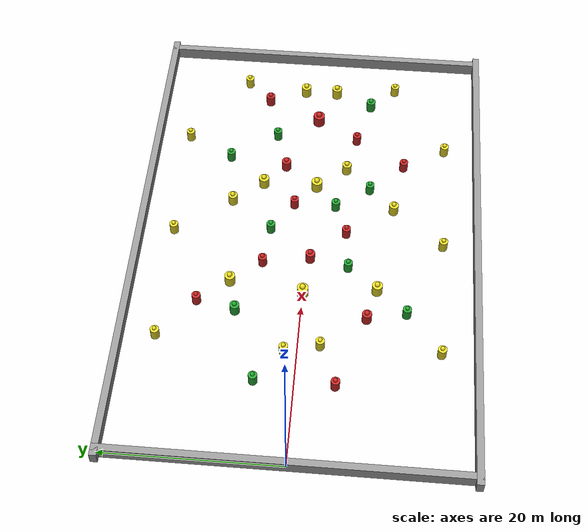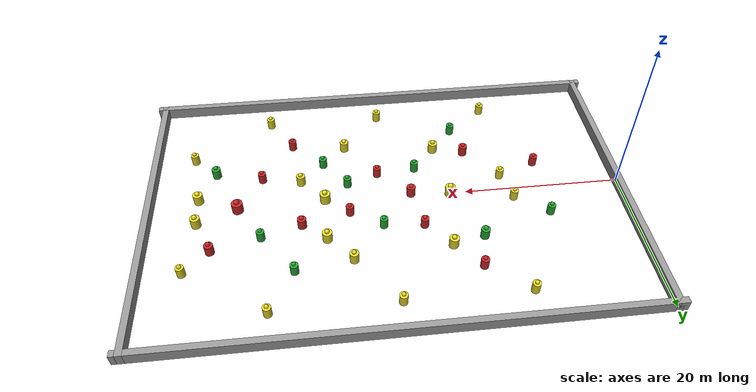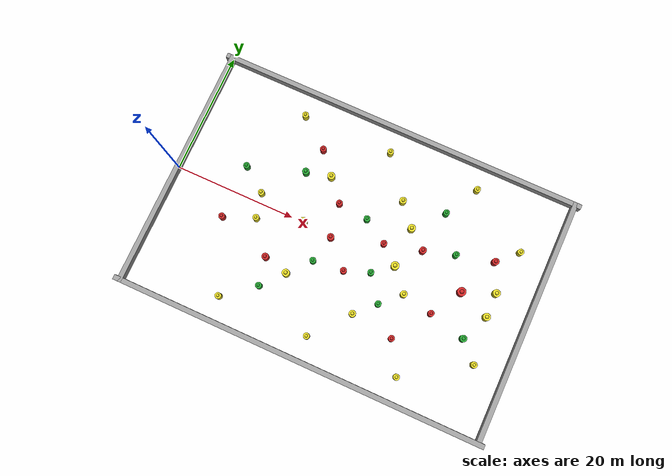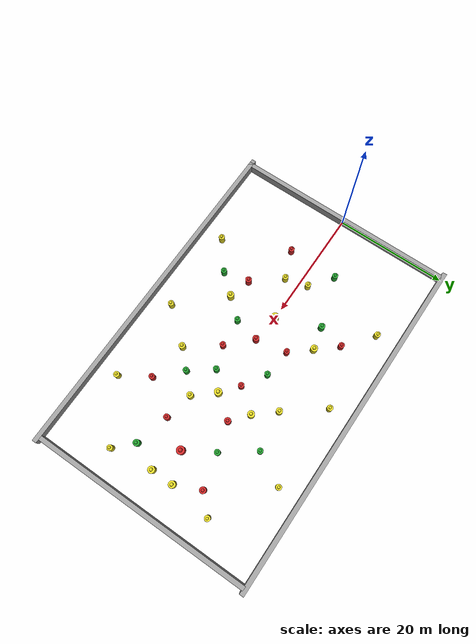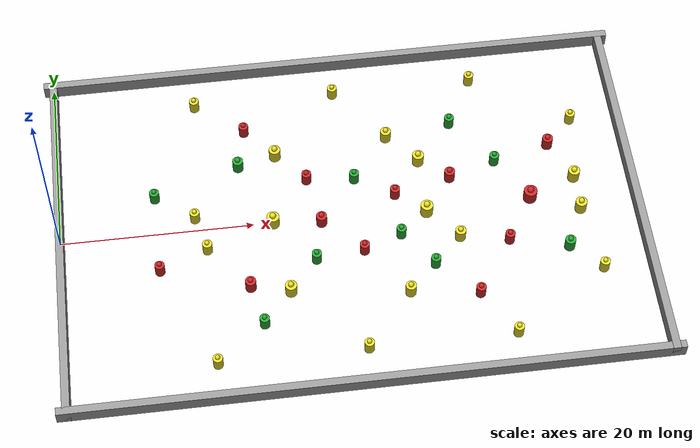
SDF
<sdf version="1.6">
 <world name="closed_aquatic_arena">
  <scene><sky><clouds><speed>12</speed></clouds></sky><grid>0</grid><origin_visual>0</origin_visual></scene>
  <include><uri>model://sun</uri></include>
  <model name="wall_north">
   <static>true</static>
   <pose>30 20 0.5 0 0 0</pose>
   <link name="link">
    <visual name="visual">
     <geometry><box><size>62 0.8 1.5</size></box></geometry>
     <material><script><name>Gazebo/Grey</name></script></material>
    </visual>
    <collision name="collision"><geometry><box><size>62 0.8 1.5</size></box></geometry></collision>
   </link>
  </model>
  <model name="wall_south">
   <static>true</static>
   <pose>30 -20 0.5 0 0 0</pose>
   <link name="link">
    <visual name="visual">
     <geometry><box><size>62 0.8 1.5</size></box></geometry>
     <material><script><name>Gazebo/Grey</name></script></material>
    </visual>
    <collision name="collision"><geometry><box><size>62 0.8 1.5</size></box></geometry></collision>
   </link>
  </model>
  <model name="wall_east">
   <static>true</static>
   <pose>60 0 0.5 0 0 0</pose>
   <link name="link">
    <visual name="visual">
     <geometry><box><size>0.8 40.8 1.5</size></box></geometry>
     <material><script><name>Gazebo/Grey</name></script></material>
    </visual>
    <collision name="collision"><geometry><box><size>0.8 40.8 1.5</size></box></geometry></collision>
   </link>
  </model>
  <model name="wall_west">
   <static>true</static>
   <pose>0 0 0.5 0 0 0</pose>
   <link name="link">
    <visual name="visual">
     <geometry><box><size>0.8 40.8 1.5</size></box></geometry>
     <material><script><name>Gazebo/Grey</name></script></material>
    </visual>
    <collision name="collision"><geometry><box><size>0.8 40.8 1.5</size></box></geometry></collision>
   </link>
  </model>
  <model name="buoy_gate1_green">
   <static>true</static>
   <pose>10.0 4.5 0.5 0 0 0</pose>
   <link name="link">
    <visual name="body">
     <geometry><cylinder><radius>0.50</radius><length>1.40</length></cylinder></geometry>
     <material><script><name>Gazebo/Green</name></script></material>
    </visual>
    <visual name="top_beacon">
     <pose>0 0 0.85 0 0 0</pose>
     <geometry><sphere><radius>0.25</radius></sphere></geometry>
     <material><script><name>Gazebo/Green</name></script></material>
    </visual>
    <collision name="collision">
     <geometry><cylinder><radius>0.50</radius><length>1.40</length></cylinder></geometry>
    </collision>
   </link>
  </model>
  <model name="buoy_gate1_red">
   <static>true</static>
   <pose>10.0 -4.5 0.5 0 0 0</pose>
   <link name="link">
    <visual name="body">
     <geometry><cylinder><radius>0.50</radius><length>1.40</length></cylinder></geometry>
     <material><script><name>Gazebo/Red</name></script></material>
    </visual>
    <visual name="top_beacon">
     <pose>0 0 0.85 0 0 0</pose>
     <geometry><sphere><radius>0.25</radius></sphere></geometry>
     <material><script><name>Gazebo/Red</name></script></material>
    </visual>
    <collision name="collision">
     <geometry><cylinder><radius>0.50</radius><length>1.40</length></cylinder></geometry>
    </collision>
   </link>
  </model>
  <model name="buoy_start_haz1">
   <static>true</static>
   <pose>14.0 1.5 0.5 0 0 0</pose>
   <link name="link">
    <visual name="body">
     <geometry><cylinder><radius>0.50</radius><length>1.40</length></cylinder></geometry>
     <material><script><name>Gazebo/Yellow</name></script></material>
    </visual>
    <visual name="top_beacon">
     <pose>0 0 0.85 0 0 0</pose>
     <geometry><sphere><radius>0.25</radius></sphere></geometry>
     <material><script><name>Gazebo/Yellow</name></script></material>
    </visual>
    <collision name="collision">
     <geometry><cylinder><radius>0.50</radius><length>1.40</length></cylinder></geometry>
    </collision>
   </link>
  </model>
  <model name="buoy_start_haz2">
   <static>true</static>
   <pose>15.0 -2.5 0.5 0 0 0</pose>
   <link name="link">
    <visual name="body">
     <geometry><cylinder><radius>0.50</radius><length>1.40</length></cylinder></geometry>
     <material><script><name>Gazebo/Yellow</name></script></material>
    </visual>
    <visual name="top_beacon">
     <pose>0 0 0.85 0 0 0</pose>
     <geometry><sphere><radius>0.25</radius></sphere></geometry>
     <material><script><name>Gazebo/Yellow</name></script></material>
    </visual>
    <collision name="collision">
     <geometry><cylinder><radius>0.50</radius><length>1.40</length></cylinder></geometry>
    </collision>
   </link>
  </model>
  <model name="buoy_s1_green1">
   <static>true</static>
   <pose>19.0 7.5 0.5 0 0 0</pose>
   <link name="link">
    <visual name="body">
     <geometry><cylinder><radius>0.55</radius><length>1.40</length></cylinder></geometry>
     <material><script><name>Gazebo/Green</name></script></material>
    </visual>
    <visual name="top_beacon">
     <pose>0 0 0.85 0 0 0</pose>
     <geometry><sphere><radius>0.28</radius></sphere></geometry>
     <material><script><name>Gazebo/Green</name></script></material>
    </visual>
    <collision name="collision">
     <geometry><cylinder><radius>0.55</radius><length>1.40</length></cylinder></geometry>
    </collision>
   </link>
  </model>
  <model name="buoy_s1_red1">
   <static>true</static>
   <pose>20.0 12.0 0.5 0 0 0</pose>
   <link name="link">
    <visual name="body">
     <geometry><cylinder><radius>0.50</radius><length>1.40</length></cylinder></geometry>
     <material><script><name>Gazebo/Red</name></script></material>
    </visual>
    <visual name="top_beacon">
     <pose>0 0 0.85 0 0 0</pose>
     <geometry><sphere><radius>0.25</radius></sphere></geometry>
     <material><script><name>Gazebo/Red</name></script></material>
    </visual>
    <collision name="collision">
     <geometry><cylinder><radius>0.50</radius><length>1.40</length></cylinder></geometry>
    </collision>
   </link>
  </model>
  <model name="buoy_s1_haz1">
   <static>true</static>
   <pose>23.0 8.5 0.5 0 0 0</pose>
   <link name="link">
    <visual name="body">
     <geometry><cylinder><radius>0.60</radius><length>1.40</length></cylinder></geometry>
     <material><script><name>Gazebo/Yellow</name></script></material>
    </visual>
    <visual name="top_beacon">
     <pose>0 0 0.85 0 0 0</pose>
     <geometry><sphere><radius>0.30</radius></sphere></geometry>
     <material><script><name>Gazebo/Yellow</name></script></material>
    </visual>
    <collision name="collision">
     <geometry><cylinder><radius>0.60</radius><length>1.40</length></cylinder></geometry>
    </collision>
   </link>
  </model>
  <model name="buoy_s1_red2">
   <static>true</static>
   <pose>26.0 5.0 0.5 0 0 0</pose>
   <link name="link">
    <visual name="body">
     <geometry><cylinder><radius>0.50</radius><length>1.40</length></cylinder></geometry>
     <material><script><name>Gazebo/Red</name></script></material>
    </visual>
    <visual name="top_beacon">
     <pose>0 0 0.85 0 0 0</pose>
     <geometry><sphere><radius>0.25</radius></sphere></geometry>
     <material><script><name>Gazebo/Red</name></script></material>
    </visual>
    <collision name="collision">
     <geometry><cylinder><radius>0.50</radius><length>1.40</length></cylinder></geometry>
    </collision>
   </link>
  </model>
  <model name="buoy_s1_red3">
   <static>true</static>
   <pose>19.0 -7.5 0.5 0 0 0</pose>
   <link name="link">
    <visual name="body">
     <geometry><cylinder><radius>0.55</radius><length>1.40</length></cylinder></geometry>
     <material><script><name>Gazebo/Red</name></script></material>
    </visual>
    <visual name="top_beacon">
     <pose>0 0 0.85 0 0 0</pose>
     <geometry><sphere><radius>0.28</radius></sphere></geometry>
     <material><script><name>Gazebo/Red</name></script></material>
    </visual>
    <collision name="collision">
     <geometry><cylinder><radius>0.55</radius><length>1.40</length></cylinder></geometry>
    </collision>
   </link>
  </model>
  <model name="buoy_s1_green2">
   <static>true</static>
   <pose>20.0 -12.0 0.5 0 0 0</pose>
   <link name="link">
    <visual name="body">
     <geometry><cylinder><radius>0.50</radius><length>1.40</length></cylinder></geometry>
     <material><script><name>Gazebo/Green</name></script></material>
    </visual>
    <visual name="top_beacon">
     <pose>0 0 0.85 0 0 0</pose>
     <geometry><sphere><radius>0.25</radius></sphere></geometry>
     <material><script><name>Gazebo/Green</name></script></material>
    </visual>
    <collision name="collision">
     <geometry><cylinder><radius>0.50</radius><length>1.40</length></cylinder></geometry>
    </collision>
   </link>
  </model>
  <model name="buoy_s1_haz2">
   <static>true</static>
   <pose>23.0 -8.5 0.5 0 0 0</pose>
   <link name="link">
    <visual name="body">
     <geometry><cylinder><radius>0.60</radius><length>1.40</length></cylinder></geometry>
     <material><script><name>Gazebo/Yellow</name></script></material>
    </visual>
    <visual name="top_beacon">
     <pose>0 0 0.85 0 0 0</pose>
     <geometry><sphere><radius>0.30</radius></sphere></geometry>
     <material><script><name>Gazebo/Yellow</name></script></material>
    </visual>
    <collision name="collision">
     <geometry><cylinder><radius>0.60</radius><length>1.40</length></cylinder></geometry>
    </collision>
   </link>
  </model>
  <model name="buoy_s1_green3">
   <static>true</static>
   <pose>26.0 -5.0 0.5 0 0 0</pose>
   <link name="link">
    <visual name="body">
     <geometry><cylinder><radius>0.50</radius><length>1.40</length></cylinder></geometry>
     <material><script><name>Gazebo/Green</name></script></material>
    </visual>
    <visual name="top_beacon">
     <pose>0 0 0.85 0 0 0</pose>
     <geometry><sphere><radius>0.25</radius></sphere></geometry>
     <material><script><name>Gazebo/Green</name></script></material>
    </visual>
    <collision name="collision">
     <geometry><cylinder><radius>0.50</radius><length>1.40</length></cylinder></geometry>
    </collision>
   </link>
  </model>
  <model name="buoy_center_haz1">
   <static>true</static>
   <pose>22.0 0.0 0.5 0 0 0</pose>
   <link name="link">
    <visual name="body">
     <geometry><cylinder><radius>0.65</radius><length>1.40</length></cylinder></geometry>
     <material><script><name>Gazebo/Yellow</name></script></material>
    </visual>
    <visual name="top_beacon">
     <pose>0 0 0.85 0 0 0</pose>
     <geometry><sphere><radius>0.33</radius></sphere></geometry>
     <material><script><name>Gazebo/Yellow</name></script></material>
    </visual>
    <collision name="collision">
     <geometry><cylinder><radius>0.65</radius><length>1.40</length></cylinder></geometry>
    </collision>
   </link>
  </model>
  <model name="buoy_center_haz2">
   <static>true</static>
   <pose>27.0 -0.5 0.5 0 0 0</pose>
   <link name="link">
    <visual name="body">
     <geometry><cylinder><radius>0.55</radius><length>1.40</length></cylinder></geometry>
     <material><script><name>Gazebo/Red</name></script></material>
    </visual>
    <visual name="top_beacon">
     <pose>0 0 0.85 0 0 0</pose>
     <geometry><sphere><radius>0.28</radius></sphere></geometry>
     <material><script><name>Gazebo/Red</name></script></material>
    </visual>
    <collision name="collision">
     <geometry><cylinder><radius>0.55</radius><length>1.40</length></cylinder></geometry>
    </collision>
   </link>
  </model>
  <model name="buoy_gate2_green">
   <static>true</static>
   <pose>31.0 4.5 0.5 0 0 0</pose>
   <link name="link">
    <visual name="body">
     <geometry><cylinder><radius>0.50</radius><length>1.40</length></cylinder></geometry>
     <material><script><name>Gazebo/Green</name></script></material>
    </visual>
    <visual name="top_beacon">
     <pose>0 0 0.85 0 0 0</pose>
     <geometry><sphere><radius>0.25</radius></sphere></geometry>
     <material><script><name>Gazebo/Green</name></script></material>
    </visual>
    <collision name="collision">
     <geometry><cylinder><radius>0.50</radius><length>1.40</length></cylinder></geometry>
    </collision>
   </link>
  </model>
  <model name="buoy_gate2_red">
   <static>true</static>
   <pose>31.0 -4.5 0.5 0 0 0</pose>
   <link name="link">
    <visual name="body">
     <geometry><cylinder><radius>0.50</radius><length>1.40</length></cylinder></geometry>
     <material><script><name>Gazebo/Red</name></script></material>
    </visual>
    <visual name="top_beacon">
     <pose>0 0 0.85 0 0 0</pose>
     <geometry><sphere><radius>0.25</radius></sphere></geometry>
     <material><script><name>Gazebo/Red</name></script></material>
    </visual>
    <collision name="collision">
     <geometry><cylinder><radius>0.50</radius><length>1.40</length></cylinder></geometry>
    </collision>
   </link>
  </model>
  <model name="buoy_s2_haz1">
   <static>true</static>
   <pose>35.0 9.5 0.5 0 0 0</pose>
   <link name="link">
    <visual name="body">
     <geometry><cylinder><radius>0.55</radius><length>1.40</length></cylinder></geometry>
     <material><script><name>Gazebo/Yellow</name></script></material>
    </visual>
    <visual name="top_beacon">
     <pose>0 0 0.85 0 0 0</pose>
     <geometry><sphere><radius>0.28</radius></sphere></geometry>
     <material><script><name>Gazebo/Yellow</name></script></material>
    </visual>
    <collision name="collision">
     <geometry><cylinder><radius>0.55</radius><length>1.40</length></cylinder></geometry>
    </collision>
   </link>
  </model>
  <model name="buoy_s2_red1">
   <static>true</static>
   <pose>35.0 2.0 0.5 0 0 0</pose>
   <link name="link">
    <visual name="body">
     <geometry><cylinder><radius>0.50</radius><length>1.40</length></cylinder></geometry>
     <material><script><name>Gazebo/Red</name></script></material>
    </visual>
    <visual name="top_beacon">
     <pose>0 0 0.85 0 0 0</pose>
     <geometry><sphere><radius>0.25</radius></sphere></geometry>
     <material><script><name>Gazebo/Red</name></script></material>
    </visual>
    <collision name="collision">
     <geometry><cylinder><radius>0.50</radius><length>1.40</length></cylinder></geometry>
    </collision>
   </link>
  </model>
  <model name="buoy_s2_green1">
   <static>true</static>
   <pose>35.0 -3.0 0.5 0 0 0</pose>
   <link name="link">
    <visual name="body">
     <geometry><cylinder><radius>0.50</radius><length>1.40</length></cylinder></geometry>
     <material><script><name>Gazebo/Green</name></script></material>
    </visual>
    <visual name="top_beacon">
     <pose>0 0 0.85 0 0 0</pose>
     <geometry><sphere><radius>0.25</radius></sphere></geometry>
     <material><script><name>Gazebo/Green</name></script></material>
    </visual>
    <collision name="collision">
     <geometry><cylinder><radius>0.50</radius><length>1.40</length></cylinder></geometry>
    </collision>
   </link>
  </model>
  <model name="buoy_s2_haz2">
   <static>true</static>
   <pose>35.0 -10.0 0.5 0 0 0</pose>
   <link name="link">
    <visual name="body">
     <geometry><cylinder><radius>0.55</radius><length>1.40</length></cylinder></geometry>
     <material><script><name>Gazebo/Yellow</name></script></material>
    </visual>
    <visual name="top_beacon">
     <pose>0 0 0.85 0 0 0</pose>
     <geometry><sphere><radius>0.28</radius></sphere></geometry>
     <material><script><name>Gazebo/Yellow</name></script></material>
    </visual>
    <collision name="collision">
     <geometry><cylinder><radius>0.55</radius><length>1.40</length></cylinder></geometry>
    </collision>
   </link>
  </model>
  <model name="buoy_s2_haz3">
   <static>true</static>
   <pose>38.0 6.0 0.5 0 0 0</pose>
   <link name="link">
    <visual name="body">
     <geometry><cylinder><radius>0.60</radius><length>1.40</length></cylinder></geometry>
     <material><script><name>Gazebo/Yellow</name></script></material>
    </visual>
    <visual name="top_beacon">
     <pose>0 0 0.85 0 0 0</pose>
     <geometry><sphere><radius>0.30</radius></sphere></geometry>
     <material><script><name>Gazebo/Yellow</name></script></material>
    </visual>
    <collision name="collision">
     <geometry><cylinder><radius>0.60</radius><length>1.40</length></cylinder></geometry>
    </collision>
   </link>
  </model>
  <model name="buoy_s2_haz4">
   <static>true</static>
   <pose>38.0 -0.5 0.5 0 0 0</pose>
   <link name="link">
    <visual name="body">
     <geometry><cylinder><radius>0.65</radius><length>1.40</length></cylinder></geometry>
     <material><script><name>Gazebo/Yellow</name></script></material>
    </visual>
    <visual name="top_beacon">
     <pose>0 0 0.85 0 0 0</pose>
     <geometry><sphere><radius>0.33</radius></sphere></geometry>
     <material><script><name>Gazebo/Yellow</name></script></material>
    </visual>
    <collision name="collision">
     <geometry><cylinder><radius>0.65</radius><length>1.40</length></cylinder></geometry>
    </collision>
   </link>
  </model>
  <model name="buoy_s2_green2">
   <static>true</static>
   <pose>38.0 -7.0 0.5 0 0 0</pose>
   <link name="link">
    <visual name="body">
     <geometry><cylinder><radius>0.50</radius><length>1.40</length></cylinder></geometry>
     <material><script><name>Gazebo/Green</name></script></material>
    </visual>
    <visual name="top_beacon">
     <pose>0 0 0.85 0 0 0</pose>
     <geometry><sphere><radius>0.25</radius></sphere></geometry>
     <material><script><name>Gazebo/Green</name></script></material>
    </visual>
    <collision name="collision">
     <geometry><cylinder><radius>0.50</radius><length>1.40</length></cylinder></geometry>
    </collision>
   </link>
  </model>
  <model name="buoy_s2_red2">
   <static>true</static>
   <pose>41.0 3.5 0.5 0 0 0</pose>
   <link name="link">
    <visual name="body">
     <geometry><cylinder><radius>0.55</radius><length>1.40</length></cylinder></geometry>
     <material><script><name>Gazebo/Red</name></script></material>
    </visual>
    <visual name="top_beacon">
     <pose>0 0 0.85 0 0 0</pose>
     <geometry><sphere><radius>0.28</radius></sphere></geometry>
     <material><script><name>Gazebo/Red</name></script></material>
    </visual>
    <collision name="collision">
     <geometry><cylinder><radius>0.55</radius><length>1.40</length></cylinder></geometry>
    </collision>
   </link>
  </model>
  <model name="buoy_s2_haz5">
   <static>true</static>
   <pose>41.0 -4.0 0.5 0 0 0</pose>
   <link name="link">
    <visual name="body">
     <geometry><cylinder><radius>0.55</radius><length>1.40</length></cylinder></geometry>
     <material><script><name>Gazebo/Yellow</name></script></material>
    </visual>
    <visual name="top_beacon">
     <pose>0 0 0.85 0 0 0</pose>
     <geometry><sphere><radius>0.28</radius></sphere></geometry>
     <material><script><name>Gazebo/Yellow</name></script></material>
    </visual>
    <collision name="collision">
     <geometry><cylinder><radius>0.55</radius><length>1.40</length></cylinder></geometry>
    </collision>
   </link>
  </model>
  <model name="buoy_s2_green3">
   <static>true</static>
   <pose>42.0 10.5 0.5 0 0 0</pose>
   <link name="link">
    <visual name="body">
     <geometry><cylinder><radius>0.50</radius><length>1.40</length></cylinder></geometry>
     <material><script><name>Gazebo/Green</name></script></material>
    </visual>
    <visual name="top_beacon">
     <pose>0 0 0.85 0 0 0</pose>
     <geometry><sphere><radius>0.25</radius></sphere></geometry>
     <material><script><name>Gazebo/Green</name></script></material>
    </visual>
    <collision name="collision">
     <geometry><cylinder><radius>0.50</radius><length>1.40</length></cylinder></geometry>
    </collision>
   </link>
  </model>
  <model name="buoy_s2_red3">
   <static>true</static>
   <pose>42.0 -11.0 0.5 0 0 0</pose>
   <link name="link">
    <visual name="body">
     <geometry><cylinder><radius>0.50</radius><length>1.40</length></cylinder></geometry>
     <material><script><name>Gazebo/Red</name></script></material>
    </visual>
    <visual name="top_beacon">
     <pose>0 0 0.85 0 0 0</pose>
     <geometry><sphere><radius>0.25</radius></sphere></geometry>
     <material><script><name>Gazebo/Red</name></script></material>
    </visual>
    <collision name="collision">
     <geometry><cylinder><radius>0.50</radius><length>1.40</length></cylinder></geometry>
    </collision>
   </link>
  </model>
  <model name="buoy_gate3_green">
   <static>true</static>
   <pose>46.0 5.0 0.5 0 0 0</pose>
   <link name="link">
    <visual name="body">
     <geometry><cylinder><radius>0.50</radius><length>1.40</length></cylinder></geometry>
     <material><script><name>Gazebo/Green</name></script></material>
    </visual>
    <visual name="top_beacon">
     <pose>0 0 0.85 0 0 0</pose>
     <geometry><sphere><radius>0.25</radius></sphere></geometry>
     <material><script><name>Gazebo/Green</name></script></material>
    </visual>
    <collision name="collision">
     <geometry><cylinder><radius>0.50</radius><length>1.40</length></cylinder></geometry>
    </collision>
   </link>
  </model>
  <model name="buoy_gate3_red">
   <static>true</static>
   <pose>46.0 -5.0 0.5 0 0 0</pose>
   <link name="link">
    <visual name="body">
     <geometry><cylinder><radius>0.50</radius><length>1.40</length></cylinder></geometry>
     <material><script><name>Gazebo/Red</name></script></material>
    </visual>
    <visual name="top_beacon">
     <pose>0 0 0.85 0 0 0</pose>
     <geometry><sphere><radius>0.25</radius></sphere></geometry>
     <material><script><name>Gazebo/Red</name></script></material>
    </visual>
    <collision name="collision">
     <geometry><cylinder><radius>0.50</radius><length>1.40</length></cylinder></geometry>
    </collision>
   </link>
  </model>
  <model name="buoy_end_center">
   <static>true</static>
   <pose>49.0 0.0 0.5 0 0 0</pose>
   <link name="link">
    <visual name="body">
     <geometry><cylinder><radius>0.70</radius><length>1.40</length></cylinder></geometry>
     <material><script><name>Gazebo/Red</name></script></material>
    </visual>
    <visual name="top_beacon">
     <pose>0 0 0.85 0 0 0</pose>
     <geometry><sphere><radius>0.35</radius></sphere></geometry>
     <material><script><name>Gazebo/Red</name></script></material>
    </visual>
    <collision name="collision">
     <geometry><cylinder><radius>0.70</radius><length>1.40</length></cylinder></geometry>
    </collision>
   </link>
  </model>
  <model name="buoy_end_red1">
   <static>true</static>
   <pose>52.0 6.5 0.5 0 0 0</pose>
   <link name="link">
    <visual name="body">
     <geometry><cylinder><radius>0.55</radius><length>1.40</length></cylinder></geometry>
     <material><script><name>Gazebo/Red</name></script></material>
    </visual>
    <visual name="top_beacon">
     <pose>0 0 0.85 0 0 0</pose>
     <geometry><sphere><radius>0.28</radius></sphere></geometry>
     <material><script><name>Gazebo/Red</name></script></material>
    </visual>
    <collision name="collision">
     <geometry><cylinder><radius>0.55</radius><length>1.40</length></cylinder></geometry>
    </collision>
   </link>
  </model>
  <model name="buoy_end_green1">
   <static>true</static>
   <pose>52.0 -6.5 0.5 0 0 0</pose>
   <link name="link">
    <visual name="body">
     <geometry><cylinder><radius>0.55</radius><length>1.40</length></cylinder></geometry>
     <material><script><name>Gazebo/Green</name></script></material>
    </visual>
    <visual name="top_beacon">
     <pose>0 0 0.85 0 0 0</pose>
     <geometry><sphere><radius>0.28</radius></sphere></geometry>
     <material><script><name>Gazebo/Green</name></script></material>
    </visual>
    <collision name="collision">
     <geometry><cylinder><radius>0.55</radius><length>1.40</length></cylinder></geometry>
    </collision>
   </link>
  </model>
  <model name="buoy_end_haz1">
   <static>true</static>
   <pose>54.0 2.0 0.5 0 0 0</pose>
   <link name="link">
    <visual name="body">
     <geometry><cylinder><radius>0.60</radius><length>1.40</length></cylinder></geometry>
     <material><script><name>Gazebo/Yellow</name></script></material>
    </visual>
    <visual name="top_beacon">
     <pose>0 0 0.85 0 0 0</pose>
     <geometry><sphere><radius>0.30</radius></sphere></geometry>
     <material><script><name>Gazebo/Yellow</name></script></material>
    </visual>
    <collision name="collision">
     <geometry><cylinder><radius>0.60</radius><length>1.40</length></cylinder></geometry>
    </collision>
   </link>
  </model>
  <model name="buoy_end_haz2">
   <static>true</static>
   <pose>54.0 -2.0 0.5 0 0 0</pose>
   <link name="link">
    <visual name="body">
     <geometry><cylinder><radius>0.60</radius><length>1.40</length></cylinder></geometry>
     <material><script><name>Gazebo/Yellow</name></script></material>
    </visual>
    <visual name="top_beacon">
     <pose>0 0 0.85 0 0 0</pose>
     <geometry><sphere><radius>0.30</radius></sphere></geometry>
     <material><script><name>Gazebo/Yellow</name></script></material>
    </visual>
    <collision name="collision">
     <geometry><cylinder><radius>0.60</radius><length>1.40</length></cylinder></geometry>
    </collision>
   </link>
  </model>
  <model name="buoy_end_haz3">
   <static>true</static>
   <pose>55.0 9.5 0.5 0 0 0</pose>
   <link name="link">
    <visual name="body">
     <geometry><cylinder><radius>0.50</radius><length>1.40</length></cylinder></geometry>
     <material><script><name>Gazebo/Yellow</name></script></material>
    </visual>
    <visual name="top_beacon">
     <pose>0 0 0.85 0 0 0</pose>
     <geometry><sphere><radius>0.25</radius></sphere></geometry>
     <material><script><name>Gazebo/Yellow</name></script></material>
    </visual>
    <collision name="collision">
     <geometry><cylinder><radius>0.50</radius><length>1.40</length></cylinder></geometry>
    </collision>
   </link>
  </model>
  <model name="buoy_end_haz4">
   <static>true</static>
   <pose>55.0 -9.5 0.5 0 0 0</pose>
   <link name="link">
    <visual name="body">
     <geometry><cylinder><radius>0.50</radius><length>1.40</length></cylinder></geometry>
     <material><script><name>Gazebo/Yellow</name></script></material>
    </visual>
    <visual name="top_beacon">
     <pose>0 0 0.85 0 0 0</pose>
     <geometry><sphere><radius>0.25</radius></sphere></geometry>
     <material><script><name>Gazebo/Yellow</name></script></material>
    </visual>
    <collision name="collision">
     <geometry><cylinder><radius>0.50</radius><length>1.40</length></cylinder></geometry>
    </collision>
   </link>
  </model>
  <model name="buoy_lat_north1">
   <static>true</static>
   <pose>15.0 16.0 0.5 0 0 0</pose>
   <link name="link">
    <visual name="body">
     <geometry><cylinder><radius>0.50</radius><length>1.40</length></cylinder></geometry>
     <material><script><name>Gazebo/Yellow</name></script></material>
    </visual>
    <visual name="top_beacon">
     <pose>0 0 0.85 0 0 0</pose>
     <geometry><sphere><radius>0.25</radius></sphere></geometry>
     <material><script><name>Gazebo/Yellow</name></script></material>
    </visual>
    <collision name="collision">
     <geometry><cylinder><radius>0.50</radius><length>1.40</length></cylinder></geometry>
    </collision>
   </link>
  </model>
  <model name="buoy_lat_north2">
   <static>true</static>
   <pose>30.0 16.0 0.5 0 0 0</pose>
   <link name="link">
    <visual name="body">
     <geometry><cylinder><radius>0.50</radius><length>1.40</length></cylinder></geometry>
     <material><script><name>Gazebo/Yellow</name></script></material>
    </visual>
    <visual name="top_beacon">
     <pose>0 0 0.85 0 0 0</pose>
     <geometry><sphere><radius>0.25</radius></sphere></geometry>
     <material><script><name>Gazebo/Yellow</name></script></material>
    </visual>
    <collision name="collision">
     <geometry><cylinder><radius>0.50</radius><length>1.40</length></cylinder></geometry>
    </collision>
   </link>
  </model>
  <model name="buoy_lat_north3">
   <static>true</static>
   <pose>45.0 16.0 0.5 0 0 0</pose>
   <link name="link">
    <visual name="body">
     <geometry><cylinder><radius>0.50</radius><length>1.40</length></cylinder></geometry>
     <material><script><name>Gazebo/Yellow</name></script></material>
    </visual>
    <visual name="top_beacon">
     <pose>0 0 0.85 0 0 0</pose>
     <geometry><sphere><radius>0.25</radius></sphere></geometry>
     <material><script><name>Gazebo/Yellow</name></script></material>
    </visual>
    <collision name="collision">
     <geometry><cylinder><radius>0.50</radius><length>1.40</length></cylinder></geometry>
    </collision>
   </link>
  </model>
  <model name="buoy_lat_south1">
   <static>true</static>
   <pose>15.0 -16.0 0.5 0 0 0</pose>
   <link name="link">
    <visual name="body">
     <geometry><cylinder><radius>0.50</radius><length>1.40</length></cylinder></geometry>
     <material><script><name>Gazebo/Yellow</name></script></material>
    </visual>
    <visual name="top_beacon">
     <pose>0 0 0.85 0 0 0</pose>
     <geometry><sphere><radius>0.25</radius></sphere></geometry>
     <material><script><name>Gazebo/Yellow</name></script></material>
    </visual>
    <collision name="collision">
     <geometry><cylinder><radius>0.50</radius><length>1.40</length></cylinder></geometry>
    </collision>
   </link>
  </model>
  <model name="buoy_lat_south2">
   <static>true</static>
   <pose>30.0 -16.0 0.5 0 0 0</pose>
   <link name="link">
    <visual name="body">
     <geometry><cylinder><radius>0.50</radius><length>1.40</length></cylinder></geometry>
     <material><script><name>Gazebo/Yellow</name></script></material>
    </visual>
    <visual name="top_beacon">
     <pose>0 0 0.85 0 0 0</pose>
     <geometry><sphere><radius>0.25</radius></sphere></geometry>
     <material><script><name>Gazebo/Yellow</name></script></material>
    </visual>
    <collision name="collision">
     <geometry><cylinder><radius>0.50</radius><length>1.40</length></cylinder></geometry>
    </collision>
   </link>
  </model>
  <model name="buoy_lat_south3">
   <static>true</static>
   <pose>45.0 -16.0 0.5 0 0 0</pose>
   <link name="link">
    <visual name="body">
     <geometry><cylinder><radius>0.50</radius><length>1.40</length></cylinder></geometry>
     <material><script><name>Gazebo/Yellow</name></script></material>
    </visual>
    <visual name="top_beacon">
     <pose>0 0 0.85 0 0 0</pose>
     <geometry><sphere><radius>0.25</radius></sphere></geometry>
     <material><script><name>Gazebo/Yellow</name></script></material>
    </visual>
    <collision name="collision">
     <geometry><cylinder><radius>0.50</radius><length>1.40</length></cylinder></geometry>
    </collision>
   </link>
  </model>
 </world>
</sdf>
